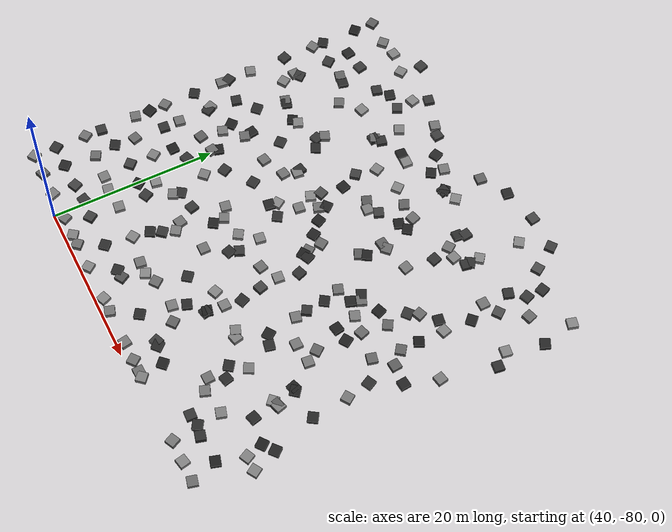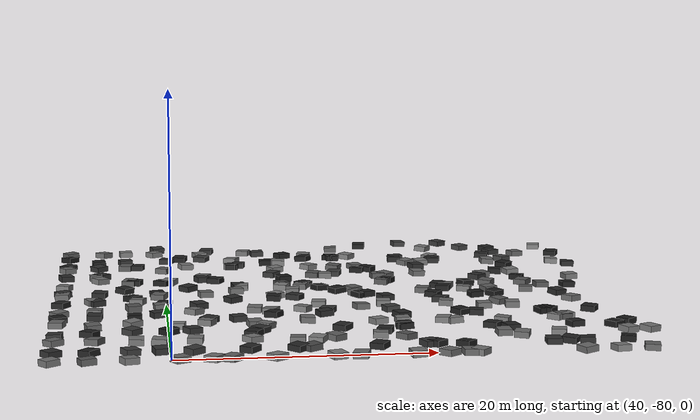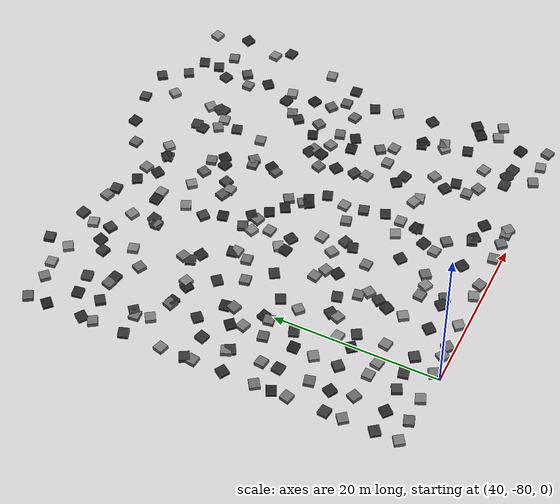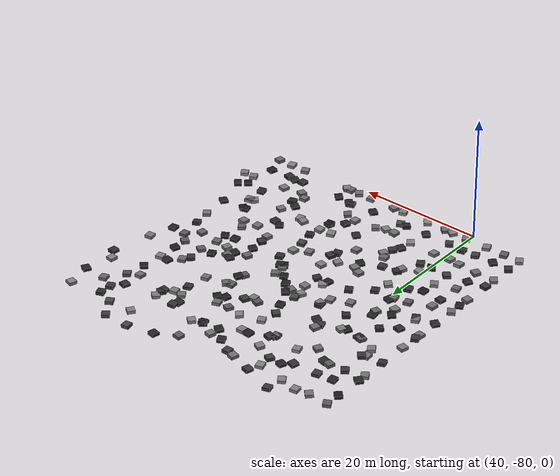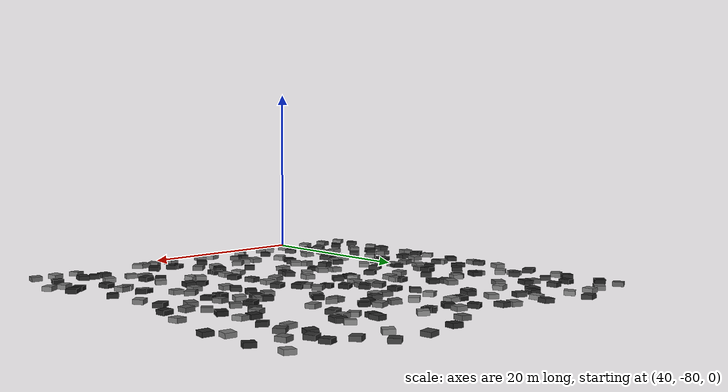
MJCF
<mujoco model="random_box_terrain">
    <compiler angle="degree" coordinate="local"/>
    <option timestep="0.01" gravity="0 0 -9.81" integrator="RK4"/>

    <worldbody>
    <body name="offset" pos="55 -55 0">
        <body name="terrain" pos="-24.0 -24.0 -0.15">
    <geom type="box" pos="0.0 0.0 0" size="0.6 0.6 0.25" euler="-0.3798163534052641 -2.41197100536718 123.28697797982264" rgba="0.4537544394171996 0.4537544394171996 0.4537544394171996 1"/>
<geom type="box" pos="0.0 2.7920433747137143 0" size="0.6 0.6 0.25" euler="-0.2632631151414211 0.8040393723207204 306.8993662024539" rgba="0.18382375773688042 0.18382375773688042 0.18382375773688042 1"/>
<geom type="box" pos="0.0 6.542492476345298 0" size="0.6 0.6 0.25" euler="-1.8734014702799167 -2.638277150472701 126.5992136962608" rgba="0.41312175187655165 0.41312175187655165 0.41312175187655165 1"/>
<geom type="box" pos="0.0 8.620142139654565 0" size="0.6 0.6 0.25" euler="-1.818499937972515 -1.651387888026723 262.8581543317323" rgba="0.20180811863088827 0.20180811863088827 0.20180811863088827 1"/>
<geom type="box" pos="0.0 13.091826386017056 0" size="0.6 0.6 0.25" euler="-0.5491982227057699 -1.3898634293596661 256.6769544079803" rgba="0.4170517886947477 0.4170517886947477 0.4170517886947477 1"/>
<geom type="box" pos="0.0 14.973319411266552 0" size="0.6 0.6 0.25" euler="1.214706703658626 0.7624815304334764 205.33202404103946" rgba="0.11482016677110987 0.11482016677110987 0.11482016677110987 1"/>
<geom type="box" pos="0.0 17.00532619746792 0" size="0.6 0.6 0.25" euler="1.5045291979466455 -2.6598069745898734 34.943732879721054" rgba="0.40506328378141554 0.40506328378141554 0.40506328378141554 1"/>
<geom type="box" pos="0.0 20.910638582266742 0" size="0.6 0.6 0.25" euler="-1.197913779927581 -2.566187634510911 146.65834044951845" rgba="0.14552853851147246 0.14552853851147246 0.14552853851147246 1"/>
<geom type="box" pos="0.0 24.575678432520625 0" size="0.6 0.6 0.25" euler="1.0749674278139834 -1.576029327524627 353.0142266792242" rgba="0.4165013347757932 0.4165013347757932 0.4165013347757932 1"/>
<geom type="box" pos="0.0 25.563977574133958 0" size="0.6 0.6 0.25" euler="-1.9274041321723658 -1.6344169486687763 117.87297453742597" rgba="0.19489062802513588 0.19489062802513588 0.19489062802513588 1"/>
<geom type="box" pos="0.0 28.506117380000568 0" size="0.6 0.6 0.25" euler="-2.155445615429696 0.5877262334641875 343.2802185174699" rgba="0.45896160101027605 0.45896160101027605 0.45896160101027605 1"/>
<geom type="box" pos="0.0 33.19097623484619 0" size="0.6 0.6 0.25" euler="0.7383181768179128 2.775484688404685 198.8770936658547" rgba="0.1827748223517508 0.1827748223517508 0.1827748223517508 1"/>
<geom type="box" pos="0.0 37.122711069478285 0" size="0.6 0.6 0.25" euler="-1.3888320288934717 0.9922485297747494 211.59277483752203" rgba="0.4293602726046313 0.4293602726046313 0.4293602726046313 1"/>
<geom type="box" pos="0.0 38.5512969031982 0" size="0.6 0.6 0.25" euler="-0.08127808898924593 -2.925382571258985 53.781680427153674" rgba="0.1361669063459648 0.1361669063459648 0.1361669063459648 1"/>
<geom type="box" pos="0.0 45.499513728143945 0" size="0.6 0.6 0.25" euler="0.6542774088087429 -2.37136297540066 209.4045340265763" rgba="0.3379975781963318 0.3379975781963318 0.3379975781963318 1"/>
<geom type="box" pos="0.0 43.0347646010919 0" size="0.6 0.6 0.25" euler="-0.9997458808487778 -0.8182427628694144 314.67589230933083" rgba="0.10050783240086791 0.10050783240086791 0.10050783240086791 1"/>
<geom type="box" pos="2.7641780491950234 0.0 0" size="0.6 0.6 0.25" euler="-2.4439170713212564 -2.939465908081674 287.7929901279897" rgba="0.34808464151792823 0.34808464151792823 0.34808464151792823 1"/>
<geom type="box" pos="2.85295769110087 2.7624354034261143 0" size="0.6 0.6 0.25" euler="-2.238525944006229 -2.9803907475983715 318.4032570475984" rgba="0.13398975062553475 0.13398975062553475 0.13398975062553475 1"/>
<geom type="box" pos="3.177744957039568 6.5772808004279995 0" size="0.6 0.6 0.25" euler="-2.557730262972413 -1.4126220116409842 152.25993554688316" rgba="0.38642401558822137 0.38642401558822137 0.38642401558822137 1"/>
<geom type="box" pos="2.7493335848270544 9.249675705154665 0" size="0.6 0.6 0.25" euler="-2.5067590403501825 1.5834333325495633 239.64198734748211" rgba="0.13626077563092953 0.13626077563092953 0.13626077563092953 1"/>
<geom type="box" pos="2.9271696310366186 11.787251244912436 0" size="0.6 0.6 0.25" euler="2.9446831371648594 -1.4110936557791471 193.8390448320135" rgba="0.37685673015498933 0.37685673015498933 0.37685673015498933 1"/>
<geom type="box" pos="3.0054833502857616 15.55869645924394 0" size="0.6 0.6 0.25" euler="2.3759299461586636 1.3195304032598205 173.71510002577725" rgba="0.1750099703419141 0.1750099703419141 0.1750099703419141 1"/>
<geom type="box" pos="2.9711034705184085 17.5933020702533 0" size="0.6 0.6 0.25" euler="-2.7637537583763194 1.2548501540228862 262.3358327301539" rgba="0.4140196440658025 0.4140196440658025 0.4140196440658025 1"/>
<geom type="box" pos="3.0337790192481084 21.420092828831635 0" size="0.6 0.6 0.25" euler="-0.10321515998660269 -1.628243769236503 298.76621456418934" rgba="0.17696101293728803 0.17696101293728803 0.17696101293728803 1"/>
<geom type="box" pos="2.7374505534223355 21.820073213240182 0" size="0.6 0.6 0.25" euler="0.5026658897464644 1.4545851435640786 22.20615068383848" rgba="0.4416993543450912 0.4416993543450912 0.4416993543450912 1"/>
<geom type="box" pos="3.24575570006749 25.06854315037574 0" size="0.6 0.6 0.25" euler="2.5111973243881067 0.6106189487457581 345.24484961363015" rgba="0.17170024281840482 0.17170024281840482 0.17170024281840482 1"/>
<geom type="box" pos="3.192341226820859 31.541593000115967 0" size="0.6 0.6 0.25" euler="-0.5712153687639887 2.1183712456043073 303.11934123725285" rgba="0.4619778523221405 0.4619778523221405 0.4619778523221405 1"/>
<geom type="box" pos="3.2932078705620946 33.65590943668287 0" size="0.6 0.6 0.25" euler="-2.191615826511741 1.1103066934824426 310.07930084901113" rgba="0.19626531311676365 0.19626531311676365 0.19626531311676365 1"/>
<geom type="box" pos="2.747004631318149 33.23924765809082 0" size="0.6 0.6 0.25" euler="-2.239711545170484 -2.0754722750674617 273.8483652964053" rgba="0.4227556532797516 0.4227556532797516 0.4227556532797516 1"/>
<geom type="box" pos="2.934952325918399 37.84722450803632 0" size="0.6 0.6 0.25" euler="2.6689137732505035 -0.7155167194047838 217.81202333081296" rgba="0.19681929158617942 0.19681929158617942 0.19681929158617942 1"/>
<geom type="box" pos="3.29262956565125 45.3108611420679 0" size="0.6 0.6 0.25" euler="-2.6327797125529004 1.1161006281011767 44.43047065007314" rgba="0.42260852596222664 0.42260852596222664 0.42260852596222664 1"/>
<geom type="box" pos="2.859655209221551 40.65225210765044 0" size="0.6 0.6 0.25" euler="-0.28878880506663407 -2.479383454953506 98.56286328630645" rgba="0.12961733755265503 0.12961733755265503 0.12961733755265503 1"/>
<geom type="box" pos="5.919326435078036 0.0 0" size="0.6 0.6 0.25" euler="-2.35346848987338 0.8158671243113291 21.252324463473705" rgba="0.4568773389714882 0.4568773389714882 0.4568773389714882 1"/>
<geom type="box" pos="5.98323288343563 2.8026725295498167 0" size="0.6 0.6 0.25" euler="-0.7531279110841576 2.3347911661048233 205.5957717989268" rgba="0.2371626348135607 0.2371626348135607 0.2371626348135607 1"/>
<geom type="box" pos="6.4127920749374585 6.351878091996472 0" size="0.6 0.6 0.25" euler="2.62901207800737 2.786337387326645 269.2288684329419" rgba="0.45276051223670544 0.45276051223670544 0.45276051223670544 1"/>
<geom type="box" pos="6.091955163534062 9.82386958010239 0" size="0.6 0.6 0.25" euler="1.1316377922418273 -0.02041697933659048 134.21406577035438" rgba="0.22717177290061397 0.22717177290061397 0.22717177290061397 1"/>
<geom type="box" pos="6.151657106507691 12.811608482643663 0" size="0.6 0.6 0.25" euler="2.8827580322795026 -2.518611470399474 305.55867165945523" rgba="0.4599803871680964 0.4599803871680964 0.4599803871680964 1"/>
<geom type="box" pos="6.305846577509104 15.277551384484699 0" size="0.6 0.6 0.25" euler="1.3378351859174842 -0.8980989070122813 91.46687796777077" rgba="0.10438514570410656 0.10438514570410656 0.10438514570410656 1"/>
<geom type="box" pos="6.2251328808071555 18.982462320106148 0" size="0.6 0.6 0.25" euler="0.9121330271777741 1.4281227642469858 282.929054233949" rgba="0.34138632994481044 0.34138632994481044 0.34138632994481044 1"/>
<geom type="box" pos="6.150826071761083 23.043501332858614 0" size="0.6 0.6 0.25" euler="-2.9307181722694997 -0.2651780122468739 132.00174507921494" rgba="0.11070946671647848 0.11070946671647848 0.11070946671647848 1"/>
<geom type="box" pos="6.5969148600525545 21.66614381463022 0" size="0.6 0.6 0.25" euler="-2.4262885037227644 -0.1871703083611589 161.99912797953107" rgba="0.44201764747908223 0.44201764747908223 0.44201764747908223 1"/>
<geom type="box" pos="5.439730512375436 26.81726911772811 0" size="0.6 0.6 0.25" euler="1.2675818418933806 2.787735055700006 134.92783770079384" rgba="0.15315274022025888 0.15315274022025888 0.15315274022025888 1"/>
<geom type="box" pos="5.895353429845345 30.450617502166967 0" size="0.6 0.6 0.25" euler="2.7377786030252214 -2.417382530758486 71.39514178039452" rgba="0.36162883485133923 0.36162883485133923 0.36162883485133923 1"/>
<geom type="box" pos="6.349640481715298 30.391552379398718 0" size="0.6 0.6 0.25" euler="-1.6357980219359651 0.0384633418366529 163.5576765570933" rgba="0.13569503759751905 0.13569503759751905 0.13569503759751905 1"/>
<geom type="box" pos="5.534925867864921 38.12657926427937 0" size="0.6 0.6 0.25" euler="1.6408184137411919 -1.3293248533858049 254.79758980062144" rgba="0.3561889020318937 0.3561889020318937 0.3561889020318937 1"/>
<geom type="box" pos="6.573140012661736 37.9411475281055 0" size="0.6 0.6 0.25" euler="-2.5174182568432473 -1.7917286522221274 167.4526308242588" rgba="0.15552834057896792 0.15552834057896792 0.15552834057896792 1"/>
<geom type="box" pos="5.442706187269979 45.65139133876404 0" size="0.6 0.6 0.25" euler="-0.7029240510693753 -0.4138902332489387 277.6625473862468" rgba="0.4762211063269699 0.4762211063269699 0.4762211063269699 1"/>
<geom type="box" pos="5.434538418426377 40.93062055469965 0" size="0.6 0.6 0.25" euler="-1.599641396973241 -0.4749838410074303 12.15868668466892" rgba="0.20598889270667087 0.20598889270667087 0.20598889270667087 1"/>
<geom type="box" pos="9.673478975753618 0.0 0" size="0.6 0.6 0.25" euler="-1.7181588986357026 -0.5558812147213716 208.41465167008556" rgba="0.41988317572619804 0.41988317572619804 0.41988317572619804 1"/>
<geom type="box" pos="8.29853060999946 2.967882901406804 0" size="0.6 0.6 0.25" euler="1.8268535568317779 0.11887056310988342 283.26773742539797" rgba="0.1898922353858002 0.1898922353858002 0.1898922353858002 1"/>
<geom type="box" pos="8.251742605213678 6.0797450459260505 0" size="0.6 0.6 0.25" euler="0.49362718017460727 2.765185468327072 81.50443821308596" rgba="0.4650018981510837 0.4650018981510837 0.4650018981510837 1"/>
<geom type="box" pos="9.041741247764525 9.583485770742707 0" size="0.6 0.6 0.25" euler="0.6886479749818006 -2.612613017791518 37.70361373963875" rgba="0.11062044791945347 0.11062044791945347 0.11062044791945347 1"/>
<geom type="box" pos="9.788786737248506 11.527395905366246 0" size="0.6 0.6 0.25" euler="-2.13844616100059 -1.6698120152086253 261.05322275672745" rgba="0.4965617434905011 0.4965617434905011 0.4965617434905011 1"/>
<geom type="box" pos="8.296640984967803 16.190496385407815 0" size="0.6 0.6 0.25" euler="-0.43619100298524227 -1.6114713946366603 288.5424237442592" rgba="0.1789558040979365 0.1789558040979365 0.1789558040979365 1"/>
<geom type="box" pos="8.553596456825685 19.377704096830822 0" size="0.6 0.6 0.25" euler="-0.37126068189737715 -2.338748139208442 9.322413537499603" rgba="0.39252520844047234 0.39252520844047234 0.39252520844047234 1"/>
<geom type="box" pos="8.836574052420115 20.115622767203305 0" size="0.6 0.6 0.25" euler="-0.885828488748897 -2.7632891276777163 164.2529845859711" rgba="0.11955374006802343 0.11955374006802343 0.11955374006802343 1"/>
<geom type="box" pos="8.48218879585593 23.73715396054784 0" size="0.6 0.6 0.25" euler="1.681874880803516 -0.4050725716788923 70.96750759669892" rgba="0.3840040372038892 0.3840040372038892 0.3840040372038892 1"/>
<geom type="box" pos="8.297753932707371 24.73298445873369 0" size="0.6 0.6 0.25" euler="0.4506928539007644 -2.099421836381154 8.43187116425593" rgba="0.12864866740580522 0.12864866740580522 0.12864866740580522 1"/>
<geom type="box" pos="9.5285647447484 30.358092616602136 0" size="0.6 0.6 0.25" euler="0.3005997750344722 -0.04725156153208676 338.6730755711191" rgba="0.471626999871661 0.471626999871661 0.471626999871661 1"/>
<geom type="box" pos="8.84530536273953 29.943688539743047 0" size="0.6 0.6 0.25" euler="-2.9867112958150877 1.110459913899975 330.9169290486319" rgba="0.10920421249057664 0.10920421249057664 0.10920421249057664 1"/>
<geom type="box" pos="9.08162282479454 36.17218966151294 0" size="0.6 0.6 0.25" euler="-1.0503812843965765 0.48145018971568376 152.3534550665389" rgba="0.38871453955318935 0.38871453955318935 0.38871453955318935 1"/>
<geom type="box" pos="9.462053550024507 41.17811884704109 0" size="0.6 0.6 0.25" euler="-2.3818423962709367 -0.6679306863785519 164.55872609593544" rgba="0.1875274880321674 0.1875274880321674 0.1875274880321674 1"/>
<geom type="box" pos="8.292465751232584 45.13973070206622 0" size="0.6 0.6 0.25" euler="-1.4555849376125043 -1.455599011005693 33.229597919601055" rgba="0.47546964745587283 0.47546964745587283 0.47546964745587283 1"/>
<geom type="box" pos="8.63629289334711 47.78610209748122 0" size="0.6 0.6 0.25" euler="2.910457526967833 1.6116221998772247 15.130480099560986" rgba="0.20969156902455854 0.20969156902455854 0.20969156902455854 1"/>
<geom type="box" pos="12.227527703779977 0.0 0" size="0.6 0.6 0.25" euler="-2.861620425611264 -0.8938628121404504 54.478067247520016" rgba="0.4734266744724146 0.4734266744724146 0.4734266744724146 1"/>
<geom type="box" pos="10.822959009450953 2.7459770732626803 0" size="0.6 0.6 0.25" euler="1.6159080531342376 -1.451570119641344 124.76262654664568" rgba="0.22558075982393433 0.22558075982393433 0.22558075982393433 1"/>
<geom type="box" pos="11.02919265482077 6.2960143418274646 0" size="0.6 0.6 0.25" euler="1.407486157265108 1.8522961083917995 262.2430858126961" rgba="0.45952934751702545 0.45952934751702545 0.45952934751702545 1"/>
<geom type="box" pos="10.930507071365355 9.752327122273178 0" size="0.6 0.6 0.25" euler="-1.6485210846648477 1.851951087059149 297.97340803510326" rgba="0.19513054340959118 0.19513054340959118 0.19513054340959118 1"/>
<geom type="box" pos="12.198690993367046 12.678531040080848 0" size="0.6 0.6 0.25" euler="-1.9937784835812529 1.5398875811679762 245.91049081265393" rgba="0.4394957846335533 0.4394957846335533 0.4394957846335533 1"/>
<geom type="box" pos="12.441112592716912 13.590942567952819 0" size="0.6 0.6 0.25" euler="2.4732188024620925 -0.9214262857583497 143.9983438511391" rgba="0.17128840385603375 0.17128840385603375 0.17128840385603375 1"/>
<geom type="box" pos="11.329645078612693 17.091293248025245 0" size="0.6 0.6 0.25" euler="-2.29212310255822 1.8033913988803514 316.8454384488791" rgba="0.4614767725915456 0.4614767725915456 0.4614767725915456 1"/>
<geom type="box" pos="11.826006477888157 19.546335277921507 0" size="0.6 0.6 0.25" euler="1.7729926418804567 1.7198820855332473 26.997052231217957" rgba="0.18133983017313918 0.18133983017313918 0.18133983017313918 1"/>
<geom type="box" pos="12.589119368580532 24.355336662960475 0" size="0.6 0.6 0.25" euler="-1.619450524132071 0.8513276178098765 100.46522634131327" rgba="0.40884168776697993 0.40884168776697993 0.40884168776697993 1"/>
<geom type="box" pos="11.142616141773722 27.222857592941356 0" size="0.6 0.6 0.25" euler="2.300701917334483 -1.8453271465602996 221.42215906098076" rgba="0.16671413444138522 0.16671413444138522 0.16671413444138522 1"/>
<geom type="box" pos="12.695698009935056 32.374711811887146 0" size="0.6 0.6 0.25" euler="-2.907430238475611 1.0816196070359831 338.4393338259286" rgba="0.40962822450915215 0.40962822450915215 0.40962822450915215 1"/>
<geom type="box" pos="12.555268188644778 31.38431951047849 0" size="0.6 0.6 0.25" euler="-0.6411760899350067 0.756229329175838 199.4567387166678" rgba="0.19471622327503907 0.19471622327503907 0.19471622327503907 1"/>
<geom type="box" pos="11.253509000280676 38.16081757806304 0" size="0.6 0.6 0.25" euler="0.584349168635848 2.8359716057112445 196.4011802203107" rgba="0.48473959554262636 0.48473959554262636 0.48473959554262636 1"/>
<geom type="box" pos="12.925174579312964 42.17945663775302 0" size="0.6 0.6 0.25" euler="2.3177063941807967 0.5951974117434387 333.69825998435437" rgba="0.22470035219631504 0.22470035219631504 0.22470035219631504 1"/>
<geom type="box" pos="12.794619443434646 44.328064802637805 0" size="0.6 0.6 0.25" euler="-2.617747968534516 -0.9928244900571501 105.23979623596232" rgba="0.49154492269370953 0.49154492269370953 0.49154492269370953 1"/>
<geom type="box" pos="10.809701085584686 42.26661117749363 0" size="0.6 0.6 0.25" euler="2.9218835235647047 -0.2117352702271229 72.79816741894557" rgba="0.13167878420743775 0.13167878420743775 0.13167878420743775 1"/>
<geom type="box" pos="13.588526713001825 0.0 0" size="0.6 0.6 0.25" euler="-1.705860287338879 -2.969589002681345 139.10532277942423" rgba="0.405478623636377 0.405478623636377 0.405478623636377 1"/>
<geom type="box" pos="15.093011472688207 2.826005504952001 0" size="0.6 0.6 0.25" euler="0.9078289948465814 -2.5353275106011983 318.2685624673548" rgba="0.15488437064646454 0.15488437064646454 0.15488437064646454 1"/>
<geom type="box" pos="15.514226398224778 6.130317035554538 0" size="0.6 0.6 0.25" euler="-1.437152863747601 1.2732371971143994 303.66746608493025" rgba="0.4887478428523887 0.4887478428523887 0.4887478428523887 1"/>
<geom type="box" pos="15.746358302677255 8.21447762815824 0" size="0.6 0.6 0.25" euler="-0.10192173170942098 -1.5906553611220233 331.3171860613558" rgba="0.1422471194799723 0.1422471194799723 0.1422471194799723 1"/>
<geom type="box" pos="16.095637727408924 11.849934274259288 0" size="0.6 0.6 0.25" euler="2.4803399396386387 1.7595683221703995 10.358144128627465" rgba="0.4058332902045644 0.4058332902045644 0.4058332902045644 1"/>
<geom type="box" pos="14.849914496000476 13.9146707791636 0" size="0.6 0.6 0.25" euler="-0.7206324589837374 -0.9381249984940094 104.32223705408286" rgba="0.19560559840311031 0.19560559840311031 0.19560559840311031 1"/>
<geom type="box" pos="16.499445909002667 17.4886169029756 0" size="0.6 0.6 0.25" euler="2.223632504265426 -0.420350868079729 349.05205651542803" rgba="0.4328184179102268 0.4328184179102268 0.4328184179102268 1"/>
<geom type="box" pos="14.876904458890943 21.83248485958239 0" size="0.6 0.6 0.25" euler="1.9853381278772808 -1.4441749441223828 121.62627150641818" rgba="0.1712549220690852 0.1712549220690852 0.1712549220690852 1"/>
<geom type="box" pos="15.36152844550206 25.5451935791068 0" size="0.6 0.6 0.25" euler="-2.911707821128183 0.44748583902180084 98.7277150592742" rgba="0.41738381599303864 0.41738381599303864 0.41738381599303864 1"/>
<geom type="box" pos="15.720563390845257 27.55370125762518 0" size="0.6 0.6 0.25" euler="2.172364831712982 0.8737355699038694 10.742951240876618" rgba="0.16224011774227148 0.16224011774227148 0.16224011774227148 1"/>
<geom type="box" pos="15.965743716214224 27.121053086442643 0" size="0.6 0.6 0.25" euler="0.2882835894631781 -2.320018926560423 84.74447348847585" rgba="0.45901803287755727 0.45901803287755727 0.45901803287755727 1"/>
<geom type="box" pos="13.767544349678664 30.663911492091824 0" size="0.6 0.6 0.25" euler="-0.7158972320081345 -0.4989806822347269 332.06485262433984" rgba="0.14405366845657208 0.14405366845657208 0.14405366845657208 1"/>
<geom type="box" pos="15.695108471399053 37.64202580089801 0" size="0.6 0.6 0.25" euler="-1.7243907580365294 0.9890254727834078 66.31364915347456" rgba="0.38639974298064206 0.38639974298064206 0.38639974298064206 1"/>
<geom type="box" pos="15.621949788260906 37.49039299875879 0" size="0.6 0.6 0.25" euler="-0.13651206740864863 0.8600273060768142 92.61815019533661" rgba="0.17030203987720555 0.17030203987720555 0.17030203987720555 1"/>
<geom type="box" pos="15.839048966184874 40.866195172518104 0" size="0.6 0.6 0.25" euler="-2.456608790777278 -1.3934302037824076 154.150253070108" rgba="0.46964045072558047 0.46964045072558047 0.46964045072558047 1"/>
<geom type="box" pos="13.582046543035535 46.165921696701744 0" size="0.6 0.6 0.25" euler="0.5022575761051762 -2.240957242149979 76.07562190365759" rgba="0.1999340880303568 0.1999340880303568 0.1999340880303568 1"/>
<geom type="box" pos="16.938461540243573 0.0 0" size="0.6 0.6 0.25" euler="-2.4581151698186177 -1.3328979680922284 307.95116869340137" rgba="0.4945818613181706 0.4945818613181706 0.4945818613181706 1"/>
<geom type="box" pos="18.796338836578965 2.8510263789331023 0" size="0.6 0.6 0.25" euler="2.7196412499497304 0.2572893228305717 46.712367516663164" rgba="0.1499759280088684 0.1499759280088684 0.1499759280088684 1"/>
<geom type="box" pos="19.023616458156706 5.563670996961419 0" size="0.6 0.6 0.25" euler="-2.4544177430411565 -0.04547345925336277 353.0932226827033" rgba="0.41693658051049776 0.41693658051049776 0.41693658051049776 1"/>
<geom type="box" pos="16.388710770342634 9.46817280869317 0" size="0.6 0.6 0.25" euler="0.44500307068872225 2.0523173540770117 50.728583983932566" rgba="0.19282269985401512 0.19282269985401512 0.19282269985401512 1"/>
<geom type="box" pos="16.952257702145918 10.936601353301514 0" size="0.6 0.6 0.25" euler="-1.0887404387942639 2.2632412128612076 146.1691063093839" rgba="0.45380736268035105 0.45380736268035105 0.45380736268035105 1"/>
<geom type="box" pos="17.927558535344453 15.285116244142252 0" size="0.6 0.6 0.25" euler="-1.6821944794505284 -1.91986619830172 57.384135952225435" rgba="0.12025425884254602 0.12025425884254602 0.12025425884254602 1"/>
<geom type="box" pos="17.821963828966336 16.693287431430825 0" size="0.6 0.6 0.25" euler="-2.9062178085917902 -1.711776595825457 335.37741609164044" rgba="0.44118484397087554 0.44118484397087554 0.44118484397087554 1"/>
<geom type="box" pos="18.516916013636447 22.188305768392635 0" size="0.6 0.6 0.25" euler="1.7168253786922136 2.723670418964738 260.59921854585986" rgba="0.13009012797428807 0.13009012797428807 0.13009012797428807 1"/>
<geom type="box" pos="18.7309091403247 23.15772970944393 0" size="0.6 0.6 0.25" euler="0.29253338455865796 -1.750355500057237 212.9643923377937" rgba="0.49936534720743875 0.49936534720743875 0.49936534720743875 1"/>
<geom type="box" pos="19.776879039231464 28.315027036653014 0" size="0.6 0.6 0.25" euler="-2.2472385130353807 2.032510236204546 293.1337184179161" rgba="0.2736643730963917 0.2736643730963917 0.2736643730963917 1"/>
<geom type="box" pos="19.591320811282046 27.058965615986246 0" size="0.6 0.6 0.25" euler="2.0386379189800596 0.7643355915635404 157.80976463030163" rgba="0.4991394576185427 0.4991394576185427 0.4991394576185427 1"/>
<geom type="box" pos="19.21232548233563 33.21015566462027 0" size="0.6 0.6 0.25" euler="-0.009830706561637648 -2.5724824267486297 229.94649499648128" rgba="0.22381160299381367 0.22381160299381367 0.22381160299381367 1"/>
<geom type="box" pos="19.733107720745767 35.79540063505651 0" size="0.6 0.6 0.25" euler="1.1679339500517933 -0.778956357434101 26.016654485392454" rgba="0.4752097202109127 0.4752097202109127 0.4752097202109127 1"/>
<geom type="box" pos="16.31641087205308 38.161704448085594 0" size="0.6 0.6 0.25" euler="-2.0363780223344867 -2.0756444766113105 76.62825309880988" rgba="0.1790438131349198 0.1790438131349198 0.1790438131349198 1"/>
<geom type="box" pos="17.236038496473434 45.008731651045125 0" size="0.6 0.6 0.25" euler="-1.8836979261738709 -0.13549552659260922 343.44417253088693" rgba="0.42783976325789963 0.42783976325789963 0.42783976325789963 1"/>
<geom type="box" pos="18.609520947676394 44.5695798428526 0" size="0.6 0.6 0.25" euler="-0.3336033237529259 -2.9532605233272258 183.65773085117323" rgba="0.21899906771234254 0.21899906771234254 0.21899906771234254 1"/>
<geom type="box" pos="21.498085148721547 0.0 0" size="0.6 0.6 0.25" euler="0.9920332515228512 1.1728227483897165 200.81281593145192" rgba="0.49355905616004303 0.49355905616004303 0.49355905616004303 1"/>
<geom type="box" pos="19.859415129732753 2.8964052253752883 0" size="0.6 0.6 0.25" euler="1.2053823676473794 -2.609366930596734 209.7163574079746" rgba="0.293292513750225 0.293292513750225 0.293292513750225 1"/>
<geom type="box" pos="20.60603767703402 5.532277484978795 0" size="0.6 0.6 0.25" euler="2.25837820505868 -1.2758476906911842 244.22093431690067" rgba="0.4961885561323337 0.4961885561323337 0.4961885561323337 1"/>
<geom type="box" pos="23.0776144390263 9.683634673266269 0" size="0.6 0.6 0.25" euler="2.048204992924032 -2.365447866141515 321.44570611455504" rgba="0.1546437023826866 0.1546437023826866 0.1546437023826866 1"/>
<geom type="box" pos="20.5330526423011 12.851864939049277 0" size="0.6 0.6 0.25" euler="0.8212838361691253 2.7383871321243474 89.50198246247847" rgba="0.41993082971742723 0.41993082971742723 0.41993082971742723 1"/>
<geom type="box" pos="22.21839062090045 15.281646472509294 0" size="0.6 0.6 0.25" euler="0.7240071412183888 -2.770074423954309 107.13207247195312" rgba="0.1583386527175269 0.1583386527175269 0.1583386527175269 1"/>
<geom type="box" pos="20.582066162708006 17.220348416732502 0" size="0.6 0.6 0.25" euler="-2.068318141763956 2.8424359080941493 58.93869881284677" rgba="0.4662896721548939 0.4662896721548939 0.4662896721548939 1"/>
<geom type="box" pos="20.389968603743377 22.34392235300063 0" size="0.6 0.6 0.25" euler="-0.644613037860363 1.026349424829732 58.0983855812263" rgba="0.17008589134339436 0.17008589134339436 0.17008589134339436 1"/>
<geom type="box" pos="20.439505909246286 25.13334387590595 0" size="0.6 0.6 0.25" euler="0.42928349033619106 -2.78043382216062 262.1438587588336" rgba="0.4482145742475576 0.4482145742475576 0.4482145742475576 1"/>
<geom type="box" pos="21.67947014613463 28.075464851528544 0" size="0.6 0.6 0.25" euler="-2.503639579358712 -1.5617298603511176 219.3522170881123" rgba="0.13370673185303633 0.13370673185303633 0.13370673185303633 1"/>
<geom type="box" pos="21.40644441321696 27.17715159248762 0" size="0.6 0.6 0.25" euler="0.5282904247857925 -2.770442418159802 158.81395153969257" rgba="0.40853464593298605 0.40853464593298605 0.40853464593298605 1"/>
<geom type="box" pos="20.153374734203688 31.092106086303282 0" size="0.6 0.6 0.25" euler="0.11034267402968112 -0.3089579815467447 104.55598576777132" rgba="0.11838988598495699 0.11838988598495699 0.11838988598495699 1"/>
<geom type="box" pos="23.098328824160138 32.6764521546316 0" size="0.6 0.6 0.25" euler="1.5628218025567069 -0.47578098124557044 158.53378489249897" rgba="0.3201870817079965 0.3201870817079965 0.3201870817079965 1"/>
<geom type="box" pos="19.08773052067739 39.45644669611377 0" size="0.6 0.6 0.25" euler="-1.227676482430211 -1.6478704247618785 175.85641076197982" rgba="0.11597674080295697 0.11597674080295697 0.11597674080295697 1"/>
<geom type="box" pos="20.349989463361602 39.39829271638346 0" size="0.6 0.6 0.25" euler="1.1122046728906874 1.6703144151243503 266.232068050809" rgba="0.48535800175148447 0.48535800175148447 0.48535800175148447 1"/>
<geom type="box" pos="21.03536379046964 43.07485914613749 0" size="0.6 0.6 0.25" euler="-0.6647816625245646 -1.2227438040274312 115.88233538028831" rgba="0.1385421564380636 0.1385421564380636 0.1385421564380636 1"/>
<geom type="box" pos="23.31305823357349 0.0 0" size="0.6 0.6 0.25" euler="0.3068642113807103 -2.9749232400802157 252.55997129978846" rgba="0.41991374843998097 0.41991374843998097 0.41991374843998097 1"/>
<geom type="box" pos="25.129611429838235 2.874878440137822 0" size="0.6 0.6 0.25" euler="1.5699240234303602 -2.4721113395290883 325.62932144066906" rgba="0.13754045103992302 0.13754045103992302 0.13754045103992302 1"/>
<geom type="box" pos="22.113441843799297 6.1724255335353675 0" size="0.6 0.6 0.25" euler="1.537385895043478 1.937315681701862 127.94109759571107" rgba="0.3916913093421933 0.3916913093421933 0.3916913093421933 1"/>
<geom type="box" pos="26.344574661408494 8.13740827378965 0" size="0.6 0.6 0.25" euler="-0.27798625374496844 -2.045627862776851 250.04575927107794" rgba="0.14397277842870226 0.14397277842870226 0.14397277842870226 1"/>
<geom type="box" pos="26.29203919758885 11.670944577853597 0" size="0.6 0.6 0.25" euler="-1.9210223168753193 -1.6580708293840538 22.067251145289365" rgba="0.494022200861873 0.494022200861873 0.494022200861873 1"/>
<geom type="box" pos="22.63889867107202 16.399075236923828 0" size="0.6 0.6 0.25" euler="-0.771083353245138 -2.3401648939482778 158.16204873737763" rgba="0.20263944759074734 0.20263944759074734 0.20263944759074734 1"/>
<geom type="box" pos="22.162812490799254 19.2194421363696 0" size="0.6 0.6 0.25" euler="0.44632249629292975 -1.5521843148497336 80.70334081987149" rgba="0.4742232072771154 0.4742232072771154 0.4742232072771154 1"/>
<geom type="box" pos="26.250509519969402 22.82298201899582 0" size="0.6 0.6 0.25" euler="0.7694264917733031 2.58587914071261 304.0625685193228" rgba="0.10115383661350329 0.10115383661350329 0.10115383661350329 1"/>
<geom type="box" pos="26.08451406655126 23.499802931638154 0" size="0.6 0.6 0.25" euler="-0.1413747147503308 1.76099203143775 36.576163860766606" rgba="0.3753197934325535 0.3753197934325535 0.3753197934325535 1"/>
<geom type="box" pos="23.022425058976065 26.405699103262435 0" size="0.6 0.6 0.25" euler="-2.8429023535043934 1.5867835686290466 25.322495432122388" rgba="0.11372824513248113 0.11372824513248113 0.11372824513248113 1"/>
<geom type="box" pos="24.169061445159116 32.216127095553794 0" size="0.6 0.6 0.25" euler="-1.2799374627462614 2.2554094646118763 85.66407351536432" rgba="0.4621397529985506 0.4621397529985506 0.4621397529985506 1"/>
<geom type="box" pos="25.140280097524027 33.188440347268816 0" size="0.6 0.6 0.25" euler="1.572579409904475 -1.7882790248050173 248.3457403265287" rgba="0.22396002553885813 0.22396002553885813 0.22396002553885813 1"/>
<geom type="box" pos="23.08230630515251 36.776020456876495 0" size="0.6 0.6 0.25" euler="-1.127224426252074 1.491765008746957 130.17757348940003" rgba="0.4933889806078755 0.4933889806078755 0.4933889806078755 1"/>
<geom type="box" pos="25.84235924999536 41.44803517219761 0" size="0.6 0.6 0.25" euler="1.6150699838244682 2.115980148825235 11.366974470547175" rgba="0.16290227663682902 0.16290227663682902 0.16290227663682902 1"/>
<geom type="box" pos="23.192173679411702 42.96044713053539 0" size="0.6 0.6 0.25" euler="0.8756599025685592 1.3826440030642866 74.87842387361557" rgba="0.43747768822826705 0.43747768822826705 0.43747768822826705 1"/>
<geom type="box" pos="22.983982091969843 41.33583527096635 0" size="0.6 0.6 0.25" euler="-2.111146977859513 -2.727919001663023 147.6890080422559" rgba="0.13200416064124562 0.13200416064124562 0.13200416064124562 1"/>
<geom type="box" pos="27.64593701431677 0.0 0" size="0.6 0.6 0.25" euler="2.3128443693461636 -1.8240134853699277 8.44237683910439" rgba="0.4366057467419254 0.4366057467419254 0.4366057467419254 1"/>
<geom type="box" pos="29.08294973760042 3.2145471304019875 0" size="0.6 0.6 0.25" euler="2.082830058144876 0.34200627961994545 202.2604060204917" rgba="0.20933635041910115 0.20933635041910115 0.20933635041910115 1"/>
<geom type="box" pos="25.72566082019084 6.549615716932806 0" size="0.6 0.6 0.25" euler="-2.37394970921689 2.3527084857034986 262.2263937855183" rgba="0.453455838978169 0.453455838978169 0.453455838978169 1"/>
<geom type="box" pos="28.154001130898173 9.629463432346254 0" size="0.6 0.6 0.25" euler="0.9654581810022993 -2.9262175749643533 101.93243688361987" rgba="0.13479742016324986 0.13479742016324986 0.13479742016324986 1"/>
<geom type="box" pos="28.322465012074296 11.88409042228562 0" size="0.6 0.6 0.25" euler="-1.4036678926004589 -2.3664029579832655 271.2501878884849" rgba="0.46373245940952645 0.46373245940952645 0.46373245940952645 1"/>
<geom type="box" pos="28.60406628684564 13.93872514206097 0" size="0.6 0.6 0.25" euler="1.1089745603703278 1.1692867149658728 294.2300214333029" rgba="0.15125397385709516 0.15125397385709516 0.15125397385709516 1"/>
<geom type="box" pos="25.652381017527258 17.67692992532659 0" size="0.6 0.6 0.25" euler="-2.9088065135036443 1.768844503813022 193.54763628283823" rgba="0.4045879323492675 0.4045879323492675 0.4045879323492675 1"/>
<geom type="box" pos="26.848334669125183 23.071082252591403 0" size="0.6 0.6 0.25" euler="-2.1179358452190344 0.6295622346754071 114.70867328710798" rgba="0.13381813842574136 0.13381813842574136 0.13381813842574136 1"/>
<geom type="box" pos="25.93294392227663 25.263557161050397 0" size="0.6 0.6 0.25" euler="1.3183816603649792 1.843923154262483 211.86566441185366" rgba="0.3822118037052199 0.3822118037052199 0.3822118037052199 1"/>
<geom type="box" pos="24.446127496151394 25.046576451916014 0" size="0.6 0.6 0.25" euler="2.1116889275204507 -2.8588393725517345 28.961732401481022" rgba="0.11816020965494341 0.11816020965494341 0.11816020965494341 1"/>
<geom type="box" pos="29.10590315122877 28.568983655258272 0" size="0.6 0.6 0.25" euler="0.31447445171867816 1.9956084266038392 66.14343412532803" rgba="0.3285073725775769 0.3285073725775769 0.3285073725775769 1"/>
<geom type="box" pos="28.612121649699993 35.1274116225146 0" size="0.6 0.6 0.25" euler="0.5811289833649242 1.5750670647712397 144.23652696850047" rgba="0.1160408967269941 0.1160408967269941 0.1160408967269941 1"/>
<geom type="box" pos="25.481530589679863 36.35804174475078 0" size="0.6 0.6 0.25" euler="2.3540231887994683 2.72366871886107 334.6879098884527" rgba="0.3479334084145702 0.3479334084145702 0.3479334084145702 1"/>
<geom type="box" pos="25.794367937268394 41.58940217241911 0" size="0.6 0.6 0.25" euler="-1.1839856793589831 -1.8996987487468309 133.66645365346093" rgba="0.1229077475328288 0.1229077475328288 0.1229077475328288 1"/>
<geom type="box" pos="26.3102178334118 46.17191322937583 0" size="0.6 0.6 0.25" euler="-0.18081929605209623 -1.811992384472928 352.66892521972244" rgba="0.356290854473589 0.356290854473589 0.356290854473589 1"/>
<geom type="box" pos="29.49030291612706 48.00065461118487 0" size="0.6 0.6 0.25" euler="1.415281511853678 -0.7577564698256634 349.4014322087983" rgba="0.13934066730858624 0.13934066730858624 0.13934066730858624 1"/>
<geom type="box" pos="31.678441557528558 0.0 0" size="0.6 0.6 0.25" euler="-0.1992566577136543 1.636546861968636 92.66193604332155" rgba="0.40131186056066404 0.40131186056066404 0.40131186056066404 1"/>
<geom type="box" pos="29.64437247552931 3.1204661285505937 0" size="0.6 0.6 0.25" euler="-1.5340624868581993 0.20949493714081235 221.54934571782297" rgba="0.14069208800546307 0.14069208800546307 0.14069208800546307 1"/>
<geom type="box" pos="27.70586477028962 5.829241532510085 0" size="0.6 0.6 0.25" euler="-1.5342714059648745 1.5470596709251998 309.60751693693703" rgba="0.3542928346594164 0.3542928346594164 0.3542928346594164 1"/>
<geom type="box" pos="28.12434358132547 9.847060192721587 0" size="0.6 0.6 0.25" euler="0.12401594845752761 -2.8783066855830213 75.78199726893517" rgba="0.10345310016959637 0.10345310016959637 0.10345310016959637 1"/>
<geom type="box" pos="32.56989992207403 11.277965944508177 0" size="0.6 0.6 0.25" euler="-2.9941948735806987 -2.85280599217337 102.49739361574369" rgba="0.473064415190698 0.473064415190698 0.473064415190698 1"/>
<geom type="box" pos="28.054605973261857 16.49573978751132 0" size="0.6 0.6 0.25" euler="-0.7963138066795263 -1.9838936414074402 285.74549597331617" rgba="0.24481799830689044 0.24481799830689044 0.24481799830689044 1"/>
<geom type="box" pos="27.764008213413867 18.8681287459591 0" size="0.6 0.6 0.25" euler="1.150337944746985 -0.013310272265814937 174.0717807576721" rgba="0.4723300445220172 0.4723300445220172 0.4723300445220172 1"/>
<geom type="box" pos="28.31820705794283 21.297440550315827 0" size="0.6 0.6 0.25" euler="-0.07552079908439246 2.064028567747191 110.10339283363582" rgba="0.17366879133568658 0.17366879133568658 0.17366879133568658 1"/>
<geom type="box" pos="32.162290828494946 24.28389421335765 0" size="0.6 0.6 0.25" euler="0.059326521821108535 -0.20535342870694606 160.46235566518249" rgba="0.38145279103398955 0.38145279103398955 0.38145279103398955 1"/>
<geom type="box" pos="29.627263049274774 29.305567687698098 0" size="0.6 0.6 0.25" euler="-1.1174139040787558 1.7251504715466037 59.95147855005945" rgba="0.11338110564836584 0.11338110564836584 0.11338110564836584 1"/>
<geom type="box" pos="29.054081826268092 31.577004400335653 0" size="0.6 0.6 0.25" euler="-1.053658654173602 -0.8759651989176209 5.068047780563334" rgba="0.35652442432390574 0.35652442432390574 0.35652442432390574 1"/>
<geom type="box" pos="27.511404878645035 34.595506463511235 0" size="0.6 0.6 0.25" euler="-1.8084557077927708 2.621228935143617 162.73119260568578" rgba="0.11724624421933445 0.11724624421933445 0.11724624421933445 1"/>
<geom type="box" pos="27.57069691894702 36.3910790481894 0" size="0.6 0.6 0.25" euler="0.7422922766584623 2.619408814932447 16.746785969895402" rgba="0.40237009638794674 0.40237009638794674 0.40237009638794674 1"/>
<geom type="box" pos="31.916413624235467 39.90870434507161 0" size="0.6 0.6 0.25" euler="-2.409850314298688 -2.03328700163814 86.40303215830959" rgba="0.1592445501905897 0.1592445501905897 0.1592445501905897 1"/>
<geom type="box" pos="27.453220101723463 42.15964251193092 0" size="0.6 0.6 0.25" euler="1.4942776026843188 1.3827247647534184 320.06747970020524" rgba="0.4936324195633838 0.4936324195633838 0.4936324195633838 1"/>
<geom type="box" pos="32.22863751880403 40.803358974023546 0" size="0.6 0.6 0.25" euler="-1.7335191608337512 -1.7047728219784282 275.56351338876004" rgba="0.1982152343893765 0.1982152343893765 0.1982152343893765 1"/>
<geom type="box" pos="30.086389661858426 0.0 0" size="0.6 0.6 0.25" euler="-1.3292947640676345 -0.8981053888543844 129.01297863012437" rgba="0.4127462178606506 0.4127462178606506 0.4127462178606506 1"/>
<geom type="box" pos="31.890458132342978 2.751472369978988 0" size="0.6 0.6 0.25" euler="-2.90213097114313 0.2751659984752983 317.33170732337027" rgba="0.11746938516800927 0.11746938516800927 0.11746938516800927 1"/>
<geom type="box" pos="35.690665464210234 6.487477405514325 0" size="0.6 0.6 0.25" euler="2.6152621911151943 0.8399710558812217 181.09650704766415" rgba="0.4082696595888762 0.4082696595888762 0.4082696595888762 1"/>
<geom type="box" pos="35.34532857237269 9.15413591668769 0" size="0.6 0.6 0.25" euler="-1.5640665528747482 0.5149558441715234 324.58148425475525" rgba="0.14776727815967036 0.14776727815967036 0.14776727815967036 1"/>
<geom type="box" pos="31.741497627671514 11.65918216066317 0" size="0.6 0.6 0.25" euler="-1.3748346327902188 -2.432054457453332 159.77754199406596" rgba="0.4710854066676472 0.4710854066676472 0.4710854066676472 1"/>
<geom type="box" pos="35.06357282010289 14.236213390239374 0" size="0.6 0.6 0.25" euler="-1.0133328833772828 1.8104148180472546 168.032168878389" rgba="0.15495567031081958 0.15495567031081958 0.15495567031081958 1"/>
<geom type="box" pos="33.20682549472935 18.427420290448367 0" size="0.6 0.6 0.25" euler="-0.30598065632943783 2.3677341592690473 347.6641502630646" rgba="0.43526562148089154 0.43526562148089154 0.43526562148089154 1"/>
<geom type="box" pos="32.99703849652938 19.908977378541053 0" size="0.6 0.6 0.25" euler="-2.5455259446531553 -2.6143342977923494 238.8516327911896" rgba="0.1932394099642752 0.1932394099642752 0.1932394099642752 1"/>
<geom type="box" pos="35.99317393543285 24.430993017062963 0" size="0.6 0.6 0.25" euler="-1.9392517701431553 2.9106926200146894 68.78945504362132" rgba="0.4498331249237356 0.4498331249237356 0.4498331249237356 1"/>
<geom type="box" pos="33.92043880882181 26.333763533845904 0" size="0.6 0.6 0.25" euler="1.4505301876770353 -1.3840066465614587 243.51513932147694" rgba="0.14015367927132527 0.14015367927132527 0.14015367927132527 1"/>
<geom type="box" pos="29.852418066516947 31.760830764782575 0" size="0.6 0.6 0.25" euler="2.319394442963448 2.761240462593399 314.71793511472885" rgba="0.3910805537774532 0.3910805537774532 0.3910805537774532 1"/>
<geom type="box" pos="33.503152727512195 35.96938089478064 0" size="0.6 0.6 0.25" euler="0.2475077989137393 2.481917438554323 285.79160680991527" rgba="0.18524228256200873 0.18524228256200873 0.18524228256200873 1"/>
<geom type="box" pos="32.84478832248011 38.227459423234805 0" size="0.6 0.6 0.25" euler="2.039496842058102 -1.3919691965093803 214.71086058586474" rgba="0.42113418229925004 0.42113418229925004 0.42113418229925004 1"/>
<geom type="box" pos="35.686569036207416 39.415017465399515 0" size="0.6 0.6 0.25" euler="1.4561385564973586 0.17321416203011708 237.4592172349857" rgba="0.17292246180652482 0.17292246180652482 0.17292246180652482 1"/>
<geom type="box" pos="35.664406269887714 40.6706761388109 0" size="0.6 0.6 0.25" euler="2.3236131016294355 -2.8736575984271737 50.67516532798475" rgba="0.4862119876548654 0.4862119876548654 0.4862119876548654 1"/>
<geom type="box" pos="33.77666654069293 48.903160862960206 0" size="0.6 0.6 0.25" euler="-1.324551718045884 2.791014958523574 7.847256329594159" rgba="0.25677840544483443 0.25677840544483443 0.25677840544483443 1"/>
<geom type="box" pos="32.438241842558575 0.0 0" size="0.6 0.6 0.25" euler="0.2413200735560972 -0.0047586508370658365 49.217110439265184" rgba="0.46305989122470737 0.46305989122470737 0.46305989122470737 1"/>
<geom type="box" pos="38.873922012233876 2.941300731546981 0" size="0.6 0.6 0.25" euler="1.2891410640883159 0.376249257171239 356.94820861644246" rgba="0.18560664274137043 0.18560664274137043 0.18560664274137043 1"/>
<geom type="box" pos="36.97918996869963 5.532909177239579 0" size="0.6 0.6 0.25" euler="2.843840383308663 0.38736099133661517 69.27257302163125" rgba="0.4259602411586835 0.4259602411586835 0.4259602411586835 1"/>
<geom type="box" pos="36.65884262075352 8.22821204677826 0" size="0.6 0.6 0.25" euler="0.07576774146284215 1.752500389478362 12.986673397868849" rgba="0.1488129402682743 0.1488129402682743 0.1488129402682743 1"/>
<geom type="box" pos="36.60119657241553 10.994565226678143 0" size="0.6 0.6 0.25" euler="-0.22494025345848012 2.908451229164836 63.00811646040263" rgba="0.4433371664302228 0.4433371664302228 0.4433371664302228 1"/>
<geom type="box" pos="33.78045304335426 14.782432453415966 0" size="0.6 0.6 0.25" euler="2.303282048416947 1.4102257701058116 125.23702950015294" rgba="0.11774162293861834 0.11774162293861834 0.11774162293861834 1"/>
<geom type="box" pos="38.805366966705236 17.20266803300511 0" size="0.6 0.6 0.25" euler="2.0879096096298175 -0.6172748536782984 83.11664130192655" rgba="0.4384724281201461 0.4384724281201461 0.4384724281201461 1"/>
<geom type="box" pos="32.790446770104055 22.241051820973844 0" size="0.6 0.6 0.25" euler="0.1376803217551439 0.7357418383493464 326.2780833013387" rgba="0.13195644908354565 0.13195644908354565 0.13195644908354565 1"/>
<geom type="box" pos="34.58943935353268 25.981177684536036 0" size="0.6 0.6 0.25" euler="-2.2836834602572997 -0.5745548980727664 159.47153589189512" rgba="0.39671249470881775 0.39671249470881775 0.39671249470881775 1"/>
<geom type="box" pos="34.128518512707345 24.829205344842375 0" size="0.6 0.6 0.25" euler="-1.8225968246543447 -0.8164952371294221 161.31242262061318" rgba="0.12677491077400208 0.12677491077400208 0.12677491077400208 1"/>
<geom type="box" pos="38.9856776299248 31.044084594526314 0" size="0.6 0.6 0.25" euler="-1.2600734063824863 0.7393740894260388 201.66496251601882" rgba="0.39120479685172393 0.39120479685172393 0.39120479685172393 1"/>
<geom type="box" pos="38.31262040653102 29.899794294545366 0" size="0.6 0.6 0.25" euler="-0.8398249957622133 1.0827412141222554 130.6809031734426" rgba="0.18964029146341407 0.18964029146341407 0.18964029146341407 1"/>
<geom type="box" pos="33.04391879900033 32.53022475712348 0" size="0.6 0.6 0.25" euler="2.445281153195226 2.192933230799672 102.25438213304339" rgba="0.43148112758208335 0.43148112758208335 0.43148112758208335 1"/>
<geom type="box" pos="35.712079430101156 38.89780450721184 0" size="0.6 0.6 0.25" euler="-1.3039522469589262 0.7129093561360058 259.5524361228486" rgba="0.17660631073137273 0.17660631073137273 0.17660631073137273 1"/>
<geom type="box" pos="34.30665736344017 38.082097719289706 0" size="0.6 0.6 0.25" euler="2.9540821399525345 -0.9277944514678773 192.18800108536618" rgba="0.47442213346509554 0.47442213346509554 0.47442213346509554 1"/>
<geom type="box" pos="37.9755817713491 48.816445964220456 0" size="0.6 0.6 0.25" euler="1.518929209895675 1.345437353034166 307.3974630510714" rgba="0.21788552649990756 0.21788552649990756 0.21788552649990756 1"/>
<geom type="box" pos="40.775901666824176 0.0 0" size="0.6 0.6 0.25" euler="2.231398635526876 -2.7783181774214887 115.26179588084973" rgba="0.4303563053073566 0.4303563053073566 0.4303563053073566 1"/>
<geom type="box" pos="41.59914231023015 2.8874797333636533 0" size="0.6 0.6 0.25" euler="-2.953246990475412 -2.54828134566553 75.48195696389274" rgba="0.16962701645732361 0.16962701645732361 0.16962701645732361 1"/>
<geom type="box" pos="40.10736293732219 6.018415466865186 0" size="0.6 0.6 0.25" euler="-0.5937587515812135 0.259367289372074 73.58252580137056" rgba="0.46440986468699774 0.46440986468699774 0.46440986468699774 1"/>
<geom type="box" pos="42.19678199869413 8.937255068276052 0" size="0.6 0.6 0.25" euler="-1.86150660642325 -1.276850867969689 194.4575478575039" rgba="0.14162730345867677 0.14162730345867677 0.14162730345867677 1"/>
<geom type="box" pos="41.35395834126065 11.674701433912361 0" size="0.6 0.6 0.25" euler="-0.1634630458267785 0.9859109161980362 316.8116920379416" rgba="0.48136232886825014 0.48136232886825014 0.48136232886825014 1"/>
<geom type="box" pos="41.30448073640921 14.39197744757868 0" size="0.6 0.6 0.25" euler="0.9561267921002217 1.5948872363906652 231.56328812802306" rgba="0.11278704556372904 0.11278704556372904 0.11278704556372904 1"/>
<geom type="box" pos="36.2651505276649 16.976364518064983 0" size="0.6 0.6 0.25" euler="-0.4094339142359633 -1.2357242436072549 89.2199713909757" rgba="0.4334960247629086 0.4334960247629086 0.4334960247629086 1"/>
<geom type="box" pos="36.523392416127564 21.905735338761247 0" size="0.6 0.6 0.25" euler="0.5888991723050552 -2.0678815788674467 8.195424456462707" rgba="0.11189696955417534 0.11189696955417534 0.11189696955417534 1"/>
<geom type="box" pos="38.19087215771223 24.15162569663682 0" size="0.6 0.6 0.25" euler="1.3993971229878035 -1.6319859985101852 16.842987474048794" rgba="0.3798486979826071 0.3798486979826071 0.3798486979826071 1"/>
<geom type="box" pos="36.6475798648758 27.152036544171924 0" size="0.6 0.6 0.25" euler="-1.3957034923716614 2.965488518845498 201.17275852999788" rgba="0.11049554908030285 0.11049554908030285 0.11049554908030285 1"/>
<geom type="box" pos="42.00383239811334 27.075427887470536 0" size="0.6 0.6 0.25" euler="1.278574924977561 -0.678216842935008 233.21454899766383" rgba="0.3501589897178983 0.3501589897178983 0.3501589897178983 1"/>
<geom type="box" pos="40.599747108782836 32.6250638429363 0" size="0.6 0.6 0.25" euler="-0.4625353214983967 1.7019975530532454 79.0400930447068" rgba="0.1362530376444725 0.1362530376444725 0.1362530376444725 1"/>
<geom type="box" pos="42.06386363162888 32.48434903637014 0" size="0.6 0.6 0.25" euler="2.1558626876887264 -2.6448955756888224 194.1036987678447" rgba="0.4846225285371135 0.4846225285371135 0.4846225285371135 1"/>
<geom type="box" pos="42.720119892936665 39.11903126928187 0" size="0.6 0.6 0.25" euler="-0.056026900298371096 1.3631227505227503 36.406882348490164" rgba="0.27650800277854937 0.27650800277854937 0.27650800277854937 1"/>
<geom type="box" pos="35.84721457663314 45.8313743238631 0" size="0.6 0.6 0.25" euler="1.241091221939997 1.8713651258984312 324.0714792271647" rgba="0.4855369114199062 0.4855369114199062 0.4855369114199062 1"/>
<geom type="box" pos="39.81628229194748 45.994227290900525 0" size="0.6 0.6 0.25" euler="1.3512177443701692 0.7754518942737354 30.823083524402723" rgba="0.27305846079639673 0.27305846079639673 0.27305846079639673 1"/>
<geom type="box" pos="43.43702528405057 0.0 0" size="0.6 0.6 0.25" euler="-2.7263845929822637 0.28131288573959345 101.81187132262257" rgba="0.4916397888044711 0.4916397888044711 0.4916397888044711 1"/>
<geom type="box" pos="40.28901530210459 3.16278380211133 0" size="0.6 0.6 0.25" euler="2.354210914022163 0.951435607708758 58.21198592879862" rgba="0.14801203691482143 0.14801203691482143 0.14801203691482143 1"/>
<geom type="box" pos="45.95085330269417 6.404805178117776 0" size="0.6 0.6 0.25" euler="0.6951144881993936 2.26286705685978 116.20365951865065" rgba="0.47336741701839824 0.47336741701839824 0.47336741701839824 1"/>
<geom type="box" pos="45.350750242570754 8.43781966320405 0" size="0.6 0.6 0.25" euler="-0.5460486304519163 0.4634654204734221 128.55736071711854" rgba="0.10131415538686346 0.10131415538686346 0.10131415538686346 1"/>
<geom type="box" pos="41.89052982981864 11.841960086971252 0" size="0.6 0.6 0.25" euler="1.906956824855909 1.5308835645461176 104.15256036093004" rgba="0.3352218545820208 0.3352218545820208 0.3352218545820208 1"/>
<geom type="box" pos="40.858768575567275 14.412789326799452 0" size="0.6 0.6 0.25" euler="1.8095002204496993 -1.750068207661083 286.6826514069152" rgba="0.1135110950900828 0.1135110950900828 0.1135110950900828 1"/>
<geom type="box" pos="37.93449808388422 18.683989714100996 0" size="0.6 0.6 0.25" euler="2.2599839580821426 2.376602745988457 217.72835172881193" rgba="0.35808884047161726 0.35808884047161726 0.35808884047161726 1"/>
<geom type="box" pos="38.30527124717529 22.151978973237014 0" size="0.6 0.6 0.25" euler="2.1023340290074586 -1.2309537566905826 302.1508169869347" rgba="0.11229503159251203 0.11229503159251203 0.11229503159251203 1"/>
<geom type="box" pos="43.37756301938639 25.58475586240305 0" size="0.6 0.6 0.25" euler="-0.6224704383205699 1.8017406047576534 93.9374163168126" rgba="0.3418998764049327 0.3418998764049327 0.3418998764049327 1"/>
<geom type="box" pos="41.98578784657391 29.35483747902426 0" size="0.6 0.6 0.25" euler="-2.715161253757751 1.6748824453639148 335.932326543919" rgba="0.10429234837080809 0.10429234837080809 0.10429234837080809 1"/>
<geom type="box" pos="38.638120544790524 27.215542170756205 0" size="0.6 0.6 0.25" euler="2.8173277193224973 0.6949570940874259 328.1893151746718" rgba="0.360749276600669 0.360749276600669 0.360749276600669 1"/>
<geom type="box" pos="42.240305688861355 35.950910009134965 0" size="0.6 0.6 0.25" euler="2.782405537236679 -0.1079821094746869 43.62123426834864" rgba="0.11634734402130893 0.11634734402130893 0.11634734402130893 1"/>
<geom type="box" pos="40.9788747837129 38.137170145062655 0" size="0.6 0.6 0.25" euler="2.6390957375629327 2.6378254747118817 179.7738373361885" rgba="0.4200172444297503 0.4200172444297503 0.4200172444297503 1"/>
<geom type="box" pos="41.098786835075344 41.340848926194845 0" size="0.6 0.6 0.25" euler="0.24618495413510555 2.01966629037765 71.9503094098715" rgba="0.17305701345128482 0.17305701345128482 0.17305701345128482 1"/>
<geom type="box" pos="44.6840714941349 41.95713895675715 0" size="0.6 0.6 0.25" euler="-0.54631102571377 1.1667081785241624 197.01251409388587" rgba="0.3899607597011421 0.3899607597011421 0.3899607597011421 1"/>
<geom type="box" pos="42.40267404879701 45.050291399469586 0" size="0.6 0.6 0.25" euler="0.9124567721364993 -0.3259047604906975 111.88179816495459" rgba="0.16879127411286232 0.16879127411286232 0.16879127411286232 1"/>
<geom type="box" pos="45.9178374631591 0.0 0" size="0.6 0.6 0.25" euler="0.22977065863142876 1.7727895052877987 255.99053350385628" rgba="0.39242608680529945 0.39242608680529945 0.39242608680529945 1"/>
<geom type="box" pos="44.947135753170315 3.122296128200526 0" size="0.6 0.6 0.25" euler="-0.32488664531225453 1.557144962582755 73.35149856348642" rgba="0.10623525793455012 0.10623525793455012 0.10623525793455012 1"/>
<geom type="box" pos="47.74656396005976 6.421869740051907 0" size="0.6 0.6 0.25" euler="0.9826002611218252 1.9973616849286504 301.72141611941504" rgba="0.47146025646519096 0.47146025646519096 0.47146025646519096 1"/>
<geom type="box" pos="46.64313685002813 9.402125169973077 0" size="0.6 0.6 0.25" euler="-0.35829549940579497 0.5199218794331579 130.68786370183494" rgba="0.12280914270780725 0.12280914270780725 0.12280914270780725 1"/>
<geom type="box" pos="42.14410406451085 11.954684508690276 0" size="0.6 0.6 0.25" euler="-1.2082618922112183 -1.6810731505827632 285.77787775421746" rgba="0.4643893204827776 0.4643893204827776 0.4643893204827776 1"/>
<geom type="box" pos="44.991942355216956 14.710158704015281 0" size="0.6 0.6 0.25" euler="2.124345974471403 -0.3489919895161355 326.64192235947775" rgba="0.13533454937706713 0.13533454937706713 0.13533454937706713 1"/>
<geom type="box" pos="44.560449468231866 19.131547834581962 0" size="0.6 0.6 0.25" euler="-1.6573669482332678 0.7594589939042047 214.3750430584117" rgba="0.43547935820305306 0.43547935820305306 0.43547935820305306 1"/>
<geom type="box" pos="44.0315674219332 22.029070448552048 0" size="0.6 0.6 0.25" euler="2.9432127971980515 2.8803582423441396 296.10520609540026" rgba="0.16518522214344947 0.16518522214344947 0.16518522214344947 1"/>
<geom type="box" pos="41.53666240524623 23.684131267636797 0" size="0.6 0.6 0.25" euler="-2.0246289224035716 0.8106297606839075 256.3656487622606" rgba="0.37233503390987677 0.37233503390987677 0.37233503390987677 1"/>
<geom type="box" pos="45.795621933934115 25.385508644738984 0" size="0.6 0.6 0.25" euler="-0.8272643330323861 1.6038518712162322 184.9636350997759" rgba="0.129761308451871 0.129761308451871 0.129761308451871 1"/>
<geom type="box" pos="47.036649799468215 29.280026619552086 0" size="0.6 0.6 0.25" euler="0.6850113418868662 -2.350053773602508 9.418654498905582" rgba="0.45169156762810814 0.45169156762810814 0.45169156762810814 1"/>
<geom type="box" pos="48.52433342730937 35.72031769070071 0" size="0.6 0.6 0.25" euler="-1.3266786696399995 2.0312608027573944 262.1058754725982" rgba="0.167674861557652 0.167674861557652 0.167674861557652 1"/>
<geom type="box" pos="47.301873425837876 37.39009921805767 0" size="0.6 0.6 0.25" euler="-1.8572191404071212 2.1504646685986835 261.09851952188933" rgba="0.48569554999674536 0.48569554999674536 0.48569554999674536 1"/>
<geom type="box" pos="48.41014464115404 41.79605749564138 0" size="0.6 0.6 0.25" euler="1.820926593187533 -1.086033392060563 243.77987156446747" rgba="0.13163231707824893 0.13163231707824893 0.13163231707824893 1"/>
<geom type="box" pos="47.55248057134501 45.821215919405915 0" size="0.6 0.6 0.25" euler="0.07958707867233406 -1.3149484150061685 73.76220550335331" rgba="0.4939288628793347 0.4939288628793347 0.4939288628793347 1"/>
<geom type="box" pos="42.411856309513574 43.01618169743773 0" size="0.6 0.6 0.25" euler="-1.4543837238262582 0.6111317858031748 292.30726543576225" rgba="0.20097774977076385 0.20097774977076385 0.20097774977076385 1"/>

        </body>
        </body>
    </worldbody>

    <actuator>
        <!-- 在这里你可以定义一些控制器 -->
    </actuator>

</mujoco>
